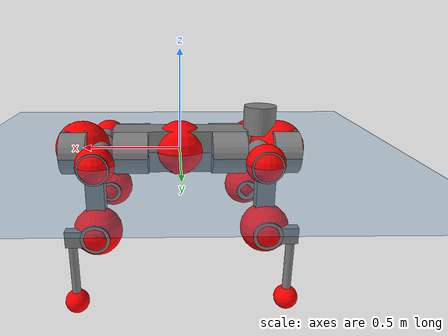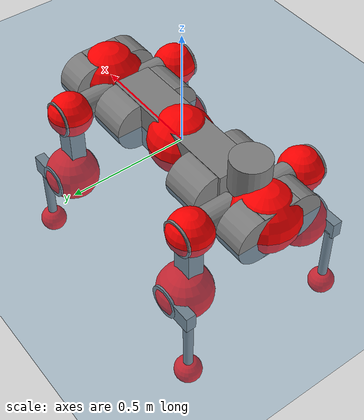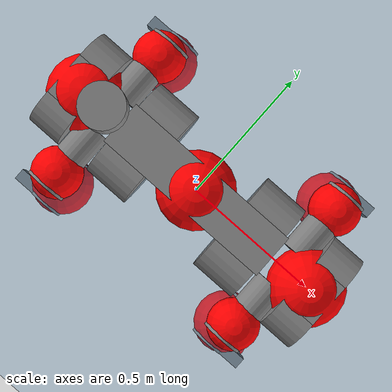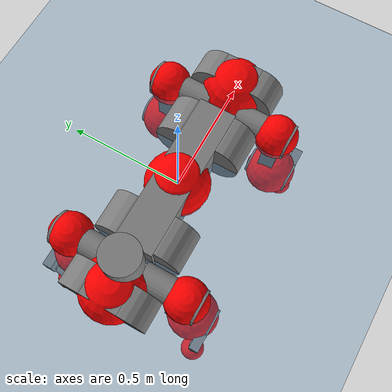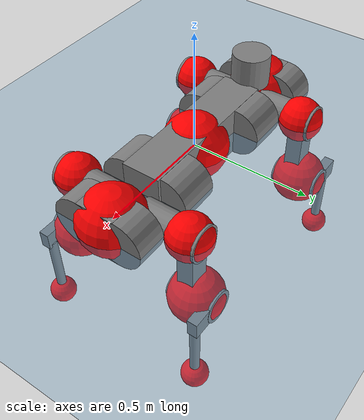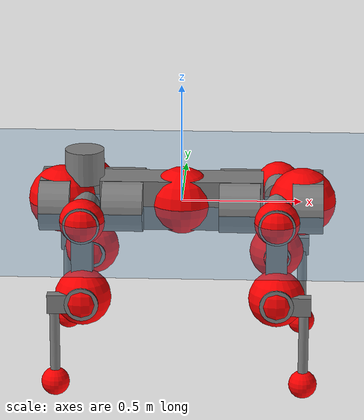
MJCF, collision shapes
<mujoco model="anymal_c">
  <compiler angle="radian" assetdir="assets" balanceinertia="true" inertiafromgeom="false"/>

  <option timestep="0.005" density="1.2" viscosity="2e-05"/>

  <size nkey="1"/>

  <visual>
    <quality shadowsize="8192"/>
    <map shadowclip="0.5"/>
  </visual>

  <default>
    <default class="/">
      <material specular="0" shininess="0.25"/>
      <geom contype="0" conaffinity="0" group="1" solref="-1000 -80"/>
      <site size="0.01 0.005 0.005" group="5"/>
      <general forcelimited="true" forcerange="-80 80" biastype="affine" gainprm="80" biasprm="0 -80 -2"/>
      <default class="anymal_c">
        <joint armature="0.01" damping="0.01" frictionloss="0.1"/>
        <default class="visual">
          <geom type="mesh" group="2"/>
          <default class="visual_zflip"/>
        </default>
        <default class="collision">
          <geom type="cylinder" group="3"/>
          <default class="foot">
            <geom size="0.03 0 0" type="sphere" condim="6" priority="1" friction="0.8 0.02 0.01" solimp="0.015 1 0.03"/>
          </default>
        </default>
      </default>
      <default class="reward_collision_sphere">
        <geom group="5" rgba="1 0 0 1"/>
      </default>
    </default>
  </default>

  <asset>
    <texture type="skybox" colorspace="auto" name="//unnamed_texture_0" builtin="gradient" rgb1="0.95 0.95 0.95" rgb2="0.95 0.95 0.95" width="100" height="600"/>
    <texture type="2d" colorspace="auto" name="texplane" builtin="checker" rgb1="0.345 0.575 0.748" rgb2="0.345 0.575 0.748" markrgb="1 1 1" width="512" height="512"/>
    <texture type="2d" colorspace="linear" name="base" file="base.png"/>
    <texture type="2d" colorspace="linear" name="top_shell" file="top_shell.png"/>
    <texture type="2d" colorspace="linear" name="bottom_shell" file="bottom_shell.png"/>
    <texture type="2d" colorspace="linear" name="remote" file="remote.png"/>
    <texture type="2d" colorspace="linear" name="hatch" file="hatch.png"/>
    <texture type="2d" colorspace="linear" name="handle" file="handle.png"/>
    <texture type="2d" colorspace="linear" name="face" file="face.png"/>
    <texture type="2d" colorspace="linear" name="battery" file="battery.png"/>
    <texture type="2d" colorspace="linear" name="lidar_cage" file="lidar_cage.png"/>
    <texture type="2d" colorspace="linear" name="depth_camera" file="depth_camera.png"/>
    <texture type="2d" colorspace="linear" name="wide_angle_camera" file="wide_angle_camera.png"/>
    <texture type="2d" colorspace="linear" name="lidar" file="lidar.png"/>
    <texture type="2d" colorspace="linear" name="drive" file="drive.png"/>
    <texture type="2d" colorspace="linear" name="hip_l" file="hip_l.png"/>
    <texture type="2d" colorspace="linear" name="shank_l" file="shank_l.png"/>
    <texture type="2d" colorspace="linear" name="foot" file="foot.png"/>
    <texture type="2d" colorspace="linear" name="thigh" file="thigh.png"/>
    <texture type="2d" colorspace="linear" name="shank_r" file="shank_r.png"/>
    <texture type="2d" colorspace="linear" name="hip_r" file="hip_r.png"/>
    <material name="MatPlane" class="/" texture="texplane" texuniform="true" texrepeat="2 2" specular="0.9" shininess="0.5"/>
    <material name="black_plastic" class="/" rgba="0.007 0.007 0.007 1"/>
    <material name="green" class="/" rgba="0.052 0.178 0.033 1"/>
    <material name="red" class="/" rgba="0.178 0.006 0.005 1"/>
    <material name="yellow" class="/" rgba="0.178 0.119 0.006 1"/>
    <material name="lwl" class="/" rgba="0.8 0.8 0.8 1"/>
    <material name="base" class="/" texture="base"/>
    <material name="top_shell" class="/" texture="top_shell"/>
    <material name="bottom_shell" class="/" texture="bottom_shell"/>
    <material name="hip_l" class="/" texture="hip_l"/>
    <material name="thigh" class="/" texture="thigh"/>
    <material name="shank_l" class="/" texture="shank_l"/>
    <material name="foot" class="/" texture="foot"/>
    <material name="hip_r" class="/" texture="hip_r"/>
    <material name="shank" class="/" texture="shank_r"/>
    <material name="hatch" class="/" texture="hatch"/>
    <material name="remote" class="/" texture="remote"/>
    <material name="handle" class="/" texture="handle"/>
    <material name="face" class="/" texture="face"/>
    <material name="depth_camera" class="/" texture="depth_camera"/>
    <material name="wide_angle_camera" class="/" texture="wide_angle_camera"/>
    <material name="battery" class="/" texture="battery"/>
    <material name="lidar_cage" class="/" texture="lidar_cage"/>
    <material name="lidar" class="/" texture="lidar"/>
    <material name="drive" class="/" texture="drive"/>
    <mesh name="base_0" class="/" file="base_0.obj"/>
    <mesh name="base_1" class="/" file="base_1.obj"/>
    <mesh name="base_2" class="/" file="base_2.obj"/>
    <mesh name="base_3" class="/" file="base_3.obj"/>
    <mesh name="base_4" class="/" file="base_4.obj"/>
    <mesh name="base_5" class="/" file="base_5.obj"/>
    <mesh name="top_shell" class="/" file="top_shell.obj"/>
    <mesh name="bottom_shell" class="/" file="bottom_shell.obj"/>
    <mesh name="remote" class="/" file="remote.obj"/>
    <mesh name="handle" class="/" file="handle.obj"/>
    <mesh name="face" class="/" file="face.obj"/>
    <mesh name="wide_angle_camera" class="/" file="wide_angle_camera.obj"/>
    <mesh name="depth_camera" class="/" file="depth_camera.obj"/>
    <mesh name="battery" class="/" file="battery.obj"/>
    <mesh name="lidar_cage" class="/" file="lidar_cage.obj"/>
    <mesh name="lidar" class="/" file="lidar.obj"/>
    <mesh name="drive" class="/" file="drive.obj"/>
    <mesh name="hip_l" class="/" file="hip_l.obj"/>
    <mesh name="thigh" class="/" file="thigh.obj"/>
    <mesh name="shank_l" class="/" file="shank_l.obj"/>
    <mesh name="foot" class="/" file="foot.obj"/>
    <mesh name="hip_r" class="/" file="hip_r.obj"/>
    <mesh name="hatch" class="/" file="hatch.obj"/>
    <mesh name="shank_r" class="/" file="shank_r.obj"/>
  </asset>

  <worldbody>
    <geom name="floor" class="/" size="100 100 0.125" type="plane" group="0" material="MatPlane"/>
    <light name="toplight_shadow" class="/" pos="0 0 5" dir="0.0990148 0.0990148 -0.990148" type="directional" ambient="0.04 0.04 0.04" diffuse="0.55 0.55 0.55" specular="0.12 0.12 0.12"/>
    <light name="toplight_fill" class="/" pos="0 0 5" dir="0.0990148 0.0990148 -0.990148" type="directional" castshadow="false" ambient="0.04 0.04 0.04" diffuse="0.3 0.3 0.3" specular="0.08 0.08 0.08"/>
    <body name="trunk" childclass="anymal_c" pos="0.00077518 0.00133507 0.00133114" quat="1 0.000102928 3.08066e-05 -7.77477e-07">
      <inertial pos="0.00497151 0.00199427 0.0514288" quat="0.511989 0.506126 0.476637 0.5045" mass="30.8616" diaginertia="1.09378 2.02283 0.364984"/>
      <joint name="//unnamed_joint_0" type="free" armature="0" damping="0" frictionloss="0"/>
      <geom name="//unnamed_geom_1" class="visual" material="green" mesh="base_0"/>
      <geom name="//unnamed_geom_2" class="visual" material="yellow" mesh="base_1"/>
      <geom name="//unnamed_geom_3" class="visual" material="red" mesh="base_2"/>
      <geom name="//unnamed_geom_4" class="visual" material="black_plastic" mesh="base_3"/>
      <geom name="//unnamed_geom_5" class="visual" material="lwl" mesh="base_4"/>
      <geom name="//unnamed_geom_6" class="visual" material="base" mesh="base_5"/>
      <geom name="trunk_1" class="collision" size="0.338823 0.0817849 0.105152" type="box"/>
      <geom name="trunk_2" class="collision" size="0.105152 0.0847058" pos="0.242808 0.089662 0" quat="0.707107 0 0.707107 0"/>
      <geom name="trunk_3" class="collision" size="0.105152 0.0847058" pos="-0.242808 0.089662 0" quat="0.707107 0 0.707107 0"/>
      <geom name="trunk_4" class="collision" size="0.105152 0.0847058" pos="0.242808 -0.089662 0" quat="0.707107 0 0.707107 0"/>
      <geom name="trunk_5" class="collision" size="0.105152 0.0847058" pos="-0.242808 -0.089662 0" quat="0.707107 0 0.707107 0"/>
      <geom name="//unnamed_geom_12" class="visual" material="top_shell" mesh="top_shell"/>
      <geom name="//unnamed_geom_13" class="visual" material="bottom_shell" mesh="bottom_shell"/>
      <geom name="//unnamed_geom_14" class="visual" material="remote" mesh="remote"/>
      <geom name="//unnamed_geom_15" class="visual" material="handle" mesh="handle"/>
      <geom name="//unnamed_geom_16" class="visual" pos="0.462731 0 0" quat="1 0 0 0" material="face" mesh="face"/>
      <geom name="trunk_6" class="collision" size="0.0642596 0.0817849 0.105152" pos="0.524131 0 0" type="box"/>
      <geom name="//unnamed_geom_18" class="collision" size="0.105152 0.0642596" pos="0.524131 0.089662 0" quat="0.707107 0 0.707107 0"/>
      <geom name="//unnamed_geom_19" class="collision" size="0.105152 0.0642596" pos="0.524131 -0.089662 0" quat="0.707107 0 0.707107 0"/>
      <geom name="//unnamed_geom_20" class="visual" pos="0.515367 0 -0.0322835" quat="0.965926 0 0.258819 0" material="depth_camera" mesh="depth_camera"/>
      <geom name="//unnamed_geom_21" class="visual" pos="0.572693 0 0.0165841" material="wide_angle_camera" mesh="wide_angle_camera"/>
      <geom name="//unnamed_geom_22" class="visual_zflip" pos="-0.462731 0 0" quat="0 0 0 1" material="face" mesh="face"/>
      <geom name="trunk_7" class="collision" size="0.0642596 0.0817849 0.105152" pos="-0.524131 0 0" quat="0 0 0 1" type="box"/>
      <geom name="//unnamed_geom_24" class="collision" size="0.105152 0.0642596" pos="-0.524131 -0.089662 0" quat="0 -0.707107 0 0.707107"/>
      <geom name="//unnamed_geom_25" class="collision" size="0.105152 0.0642596" pos="-0.524131 0.089662 0" quat="0 -0.707107 0 0.707107"/>
      <geom name="//unnamed_geom_26" class="visual" pos="-0.515367 0 -0.0322835" quat="0 -0.258819 0 0.965926" material="depth_camera" mesh="depth_camera"/>
      <geom name="//unnamed_geom_27" class="visual_zflip" pos="-0.572693 0 0.0165841" quat="0 0 0 1" material="wide_angle_camera" mesh="wide_angle_camera"/>
      <geom name="//unnamed_geom_28" class="visual" material="battery" mesh="battery"/>
      <geom name="//unnamed_geom_29" class="visual" pos="0 0.100095 0.0322471" quat="0.683013 -0.183013 0.183013 0.683013" material="depth_camera" mesh="depth_camera"/>
      <geom name="//unnamed_geom_30" class="visual" pos="0 -0.100095 0.0322471" quat="0.683013 0.183013 0.183013 -0.683013" material="depth_camera" mesh="depth_camera"/>
      <geom name="//unnamed_geom_31" class="visual" pos="-0.406355 0 0.0814249" quat="1 0 0 0" material="lidar_cage" mesh="lidar_cage"/>
      <geom name="trunk_8" class="collision" size="0.0817849 0.0701013" pos="-0.406355 0 0.147894"/>
      <geom name="//unnamed_geom_33" class="visual" pos="-0.406355 6.46376e-05 0.157532" quat="0.707107 0 0 -0.707107" material="lidar" mesh="lidar"/>
      <geom name="//unnamed_geom_34" class="visual" pos="0.334796 0.133151 2.98537e-09" quat="0.258819 0.965926 0 0" material="drive" mesh="drive"/>
      <geom name="//unnamed_geom_35" class="visual" pos="0.334796 -0.133151 -2.98537e-09" quat="0.258819 -0.965926 0 0" material="drive" mesh="drive"/>
      <geom name="//unnamed_geom_36" class="visual" pos="-0.334796 0.133151 -2.98537e-09" quat="0 0 0.965926 -0.258819" material="drive" mesh="drive"/>
      <geom name="//unnamed_geom_37" class="visual" pos="-0.334796 -0.133151 2.98537e-09" quat="0 0 -0.965926 -0.258819" material="drive" mesh="drive"/>
      <geom name="//unnamed_geom_38" class="visual" pos="0.129498 0 0.080871" quat="1 0 0 0" material="hatch" mesh="hatch"/>
      <geom name="//unnamed_geom_39" class="reward_collision_sphere" size="0.140203"/>
      <geom name="//unnamed_geom_40" class="reward_collision_sphere" size="0.140203" pos="0.502362 0 0"/>
      <geom name="//unnamed_geom_41" class="reward_collision_sphere" size="0.140203" pos="-0.502362 0 0"/>
      <site name="imu" pos="0.272469 0.0145191 0.0578778" size="0.0116836"/>
      <camera name="track" pos="0 -2.56177 0" quat="0.707107 0.707107 0 0" mode="trackcom"/>
      <camera name="ego_camera" pos="0.502362 0 -0.0443129" quat="-0.5 -0.5 0.5 0.5"/>
      <body name="LF_HIP" pos="0.334875 0.128128 -0.00320155" quat="0.258161 0.966102 0.000448231 8.22552e-05">
        <inertial pos="0.0613329 -0.019832 -0.00775597" quat="-0.130599 0.704344 -0.1351 0.684538" mass="4.51661" diaginertia="0.0101698 0.0177248 0.00540895"/>
        <joint name="LF_HAA" pos="0 0 0" axis="1 0.00031166 0.000238892" range="-0.827342 0.51134" armature="0.0113912" damping="0.0142323" frictionloss="0.115726"/>
        <geom name="//unnamed_geom_42" class="visual" pos="0 0.000175616 -2.88448e-05" quat="0.258819 -0.965926 0 0" material="hip_l" mesh="hip_l"/>
        <geom name="//unnamed_geom_43" class="visual" pos="0.06687 -0.0831319 -0.0467162" quat="0.183013 -0.683013 0.683013 0.183013" material="drive" mesh="drive"/>
        <geom name="//unnamed_geom_44" class="collision" size="0.0584178 0.0817849" pos="0.06687 -0.0153191 -0.00764951" quat="-0.353553 -0.612372 0.612372 -0.353553"/>
        <body name="LF_THIGH" pos="0.0666445 -0.0981515 -0.0481613" quat="0.183237 -0.683137 0.682862 0.182888">
          <inertial pos="0.0338642 0.000522933 -0.270094" quat="0.993235 -0.0144719 -0.0856258 0.0770958" mass="4.89656" diaginertia="0.0536415 0.103828 0.00679919"/>
          <joint name="LF_HFE" pos="0 0 0" axis="0.99997 0.006283 0.00461311" stiffness="0.0141823" range="-3.11314 3.06787" armature="0.010586" damping="0.0254689" frictionloss="0.129402"/>
          <geom name="//unnamed_geom_45" class="visual" pos="-0.00327341 -5.15812e-06 0" quat="0.707107 0 0 -0.707107" material="thigh" mesh="thigh"/>
          <geom name="//unnamed_geom_46" class="collision" size="0.0759431 0.0467342" pos="0.0446544 0 0" quat="0.5 0.5 -0.5 -0.5"/>
          <geom name="//unnamed_geom_47" class="collision" size="0.0438133 0.0350507 0.165105" pos="0.0334908 0 -0.156551" quat="0.707107 0 0 -0.707107" type="box"/>
          <geom name="//unnamed_geom_48" class="visual" pos="0.111971 0 -0.315729" quat="1 0 0 0" material="drive" mesh="drive"/>
          <geom name="//unnamed_geom_49" class="collision" size="0.0584178 0.0817849" pos="0.0338257 0 -0.315729" quat="0.707107 0 0.707107 0"/>
          <geom name="//unnamed_geom_50" class="reward_collision_sphere" size="0.0934685" pos="0.027909 0 0"/>
          <body name="LF_SHANK" pos="0.109411 0.00344039 -0.318128" quat="1 -2.15642e-05 0.000354717 -0.000417083">
            <inertial pos="0.00613366 -0.0784668 -0.0846971" quat="0.992706 -0.118158 -0.00341661 -0.0237" mass="0.90732" diaginertia="0.0176942 0.0299595 0.00194711"/>
            <joint name="LF_KFE" pos="0 0 0" axis="0.999998 0.00146578 0.000957869" range="-3.05061 3.12267" armature="0.0116077" damping="0.00824001" frictionloss="0.117771"/>
            <geom name="//unnamed_geom_51" class="visual" pos="-0.00106739 -0.00569136 0" quat="0.707107 0 0 -0.707107" material="shank_l" mesh="shank_l"/>
            <geom name="LF_kfe_act" class="collision" size="0.0701013 0.0233671" pos="0.0223272 0 0" quat="0.5 0.5 -0.5 -0.5"/>
            <geom name="//unnamed_geom_53" class="collision" size="0.0671793 0.039432 0.0221988" pos="0.0223272 -0.0736496 0" quat="0.5 0.5 -0.5 -0.5" type="box"/>
            <geom name="//unnamed_geom_54" class="visual" pos="0.0145688 -0.114488 -0.37441" quat="0.382683 0 0 -0.92388" material="foot" mesh="foot"/>
            <geom name="LF_calf" class="collision" size="0.0204462 0.165033" pos="0.0145685 -0.112654 -0.187205" quat="0.707107 0 0 -0.707107"/>
            <geom name="LF_foot" class="foot" size="0.0307248" pos="0.0145685 -0.112654 -0.349484" quat="0.707107 0 0 -0.707107"/>
            <geom name="//unnamed_geom_57" class="reward_collision_sphere" size="0.116836" pos="-0.055818 0 0"/>
            <geom name="//unnamed_geom_58" class="reward_collision_sphere" size="0.0584178" pos="0.0145685 -0.112654 -0.349484"/>
            <site name="LF_foot" class="foot" pos="0.0145685 -0.112654 -0.349484" quat="0.707107 0 0 -0.707107" size="0.0116836"/>
          </body>
        </body>
      </body>
      <body name="RF_HIP" pos="0.335461 -0.133778 -0.00203724" quat="0.259103 -0.96585 0.000295021 -8.22491e-05">
        <inertial pos="0.0611753 0.022544 -0.00664565" quat="0.136496 0.678944 0.131122 0.709374" mass="4.64889" diaginertia="0.00999333 0.0183858 0.00545651"/>
        <joint name="RF_HAA" pos="0 0 0" axis="1 0.000285523 -0.000223323" range="-0.482259 0.727062" armature="0.0130953" damping="0.0239572" frictionloss="0.129997"/>
        <geom name="//unnamed_geom_59" class="visual" pos="0 -0.000175615 -2.88447e-05" quat="0.258819 0.965926 0 0" material="hip_r" mesh="hip_r"/>
        <geom name="//unnamed_geom_60" class="visual" pos="0.06687 0.0831319 -0.0467162" quat="0.183013 0.683013 0.683013 -0.183013" material="drive" mesh="drive"/>
        <geom name="//unnamed_geom_61" class="collision" size="0.0584178 0.0817849" pos="0.06687 0.0153191 -0.00764951" quat="-0.353553 0.612372 0.612372 0.353553"/>
        <body name="RF_THIGH" pos="0.0633827 0.0876385 -0.0454898" quat="0.18375 0.682519 0.683315 -0.182987">
          <inertial pos="0.0331075 0.00498471 -0.272537" quat="0.992799 -0.0033711 -0.0816591 0.0875813" mass="4.7381" diaginertia="0.0518533 0.10088 0.00662886"/>
          <joint name="RF_HFE" pos="0 0 0" axis="0.999998 0.00167621 0.00140283" range="-3.06488 3.1371" armature="0.012623" damping="0.0248239" frictionloss="0.116357"/>
          <geom name="//unnamed_geom_62" class="visual" pos="-0.00327341 -5.15812e-06 0" quat="0.707107 0 0 -0.707107" material="thigh" mesh="thigh"/>
          <geom name="//unnamed_geom_63" class="collision" size="0.0759431 0.0467342" pos="0.0446544 0 0" quat="0.5 0.5 0.5 0.5"/>
          <geom name="//unnamed_geom_64" class="collision" size="0.0438133 0.0350507 0.165105" pos="0.0334908 0 -0.156551" quat="0.707107 0 0 0.707107" type="box"/>
          <geom name="//unnamed_geom_65" class="visual" pos="0.111971 0 -0.315729" quat="1 0 0 0" material="drive" mesh="drive"/>
          <geom name="//unnamed_geom_66" class="collision" size="0.0584178 0.0817849" pos="0.0338257 0 -0.315729" quat="0.707107 0 0.707107 0"/>
          <geom name="//unnamed_geom_67" class="reward_collision_sphere" size="0.0934685" pos="0.027909 0 0"/>
          <body name="RF_SHANK" pos="0.115646 0.00254447 -0.316003" quat="0.999999 -0.000847612 -0.000830465 -0.0003508">
            <inertial pos="0.00835266 0.0778377 -0.0896402" quat="0.992955 0.116088 -0.00101826 0.0237231" mass="0.953437" diaginertia="0.0181744 0.0316775 0.00192352"/>
            <joint name="RF_KFE" pos="0 0 0" axis="0.999747 -0.0112787 0.019482" range="-3.08237 3.11841" armature="0.00969699" damping="0" frictionloss="0.130673"/>
            <geom name="//unnamed_geom_68" class="visual" pos="-0.00106738 0.00569135 0" quat="0.707107 0 0 0.707107" material="shank" mesh="shank_r"/>
            <geom name="RF_kfe_act" class="collision" size="0.0701013 0.0233671" pos="0.0223272 0 0" quat="0.5 0.5 0.5 0.5"/>
            <geom name="//unnamed_geom_70" class="collision" size="0.0671793 0.039432 0.0221988" pos="0.0223272 0.0736496 0" quat="0.5 0.5 0.5 0.5" type="box"/>
            <geom name="//unnamed_geom_71" class="visual" pos="0.0145682 0.114488 -0.37441" quat="0.382683 0 0 0.92388" material="foot" mesh="foot"/>
            <geom name="RF_calf" class="collision" size="0.0204462 0.165033" pos="0.0145685 0.112654 -0.187205" quat="0.707107 0 0 0.707107"/>
            <geom name="RF_foot" class="foot" size="0.0295223" pos="0.0145685 0.112654 -0.349484" quat="0.707107 0 0 0.707107"/>
            <geom name="//unnamed_geom_74" class="reward_collision_sphere" size="0.116836" pos="-0.055818 0 0"/>
            <geom name="//unnamed_geom_75" class="reward_collision_sphere" size="0.0584178" pos="0.0145685 0.112654 -0.349484"/>
            <site name="RF_foot" class="foot" pos="0.0145685 0.112654 -0.349484" quat="0.707107 0 0 0.707107" size="0.0116836"/>
          </body>
        </body>
      </body>
      <body name="LH_HIP" pos="-0.33146 0.132766 0.00453988" quat="0.000605826 -0.00112833 0.965993 -0.258565">
        <inertial pos="0.0625485 0.0214841 -0.00826641" quat="0.143979 0.683857 0.130569 0.703251" mass="4.67643" diaginertia="0.0103317 0.0173767 0.00567646"/>
        <joint name="LH_HAA" pos="0 0 0" axis="0.999943 -0.00974506 -0.00432438" range="-0.446084 0.683753" armature="0.0116147" damping="0.013255" frictionloss="0.131022"/>
        <geom name="//unnamed_geom_76" class="visual" pos="0 -0.000175615 -2.88447e-05" quat="-0.258819 -0.965926 0 0" material="hip_r" mesh="hip_r"/>
        <geom name="//unnamed_geom_77" class="visual" pos="0.06687 0.0831319 -0.0467162" quat="0.183013 0.683013 0.683013 -0.183013" material="drive" mesh="drive"/>
        <geom name="//unnamed_geom_78" class="collision" size="0.0584178 0.0817849" pos="0.06687 0.0153191 -0.00764951" quat="-0.353553 0.612372 0.612372 0.353553"/>
        <body name="LH_THIGH" pos="0.0664035 0.0920644 -0.0420786" quat="0.182352 0.684065 0.682154 -0.182944">
          <inertial pos="0.0335751 -0.0018702 -0.26814" quat="0.992745 -0.00797839 -0.081918 0.0876546" mass="4.69661" diaginertia="0.0521456 0.108262 0.00704653"/>
          <joint name="LH_HFE" pos="0 0 0" axis="0.999996 0.00287997 9.94596e-05" range="-3.11395 3.14607" armature="0.010563" damping="0.0181233" frictionloss="0.108528"/>
          <geom name="//unnamed_geom_79" class="visual" pos="-0.00327341 -5.15812e-06 0" quat="0.707107 0 0 -0.707107" material="thigh" mesh="thigh"/>
          <geom name="//unnamed_geom_80" class="collision" size="0.0759431 0.0467342" pos="0.0446544 0 0" quat="0.5 0.5 -0.5 -0.5"/>
          <geom name="//unnamed_geom_81" class="collision" size="0.0438133 0.0350507 0.165105" pos="0.0334908 0 -0.156551" quat="0.707107 0 0 -0.707107" type="box"/>
          <geom name="//unnamed_geom_82" class="visual" pos="0.111971 0 -0.315729" quat="1 0 0 0" material="drive" mesh="drive"/>
          <geom name="//unnamed_geom_83" class="collision" size="0.0584178 0.0817849" pos="0.0338257 0 -0.315729" quat="0.707107 0 0.707107 0"/>
          <geom name="//unnamed_geom_84" class="reward_collision_sphere" size="0.0934685" pos="0.027909 0 0"/>
          <body name="LH_SHANK" pos="0.11168 0.00532554 -0.312544" quat="0.999999 0.00102427 0.000497271 -0.000854173">
            <inertial pos="0.00481665 0.0788548 -0.0916012" quat="0.99269 0.118133 0.000228824 0.0247131" mass="0.948116" diaginertia="0.0171447 0.0317871 0.00187926"/>
            <joint name="LH_KFE" pos="0 0 0" axis="0.999999 0.00107335 0.000943788" range="-3.23566 3.16318" armature="0.0114918" damping="0.00251464" frictionloss="0.120151"/>
            <geom name="//unnamed_geom_85" class="visual" pos="-0.00106738 0.00569135 0" quat="-0.707107 0 0 -0.707107" material="shank" mesh="shank_r"/>
            <geom name="LH_kfe_act" class="collision" size="0.0701013 0.0233671" pos="0.0223272 0 0" quat="0.5 0.5 -0.5 -0.5"/>
            <geom name="//unnamed_geom_87" class="collision" size="0.0671793 0.039432 0.0221988" pos="0.0223272 0.0736496 0" quat="0.5 0.5 -0.5 -0.5" type="box"/>
            <geom name="//unnamed_geom_88" class="visual" pos="0.0145682 0.114488 -0.37441" quat="-0.382683 0 0 -0.92388" material="foot" mesh="foot"/>
            <geom name="LH_calf" class="collision" size="0.0204462 0.165033" pos="0.0145685 0.112654 -0.187205" quat="0.707107 0 0 -0.707107"/>
            <geom name="LH_foot" class="foot" size="0.0383603" pos="0.0145685 0.112654 -0.349484" quat="0.707107 0 0 -0.707107"/>
            <geom name="//unnamed_geom_91" class="reward_collision_sphere" size="0.116836" pos="-0.055818 0 0"/>
            <geom name="//unnamed_geom_92" class="reward_collision_sphere" size="0.0584178" pos="0.0145685 0.112654 -0.349484"/>
            <site name="LH_foot" class="foot" pos="0.0145685 0.112654 -0.349484" quat="0.707107 0 0 -0.707107" size="0.0116836"/>
          </body>
        </body>
      </body>
      <body name="RH_HIP" pos="-0.332274 -0.137071 -0.00139914" quat="0.000219666 -0.000349659 -0.966182 -0.257859">
        <inertial pos="0.0657611 -0.0219244 -0.00920691" quat="-0.123846 0.71792 -0.137722 0.671033" mass="4.49235" diaginertia="0.0101064 0.0175666 0.00529681"/>
        <joint name="RH_HAA" pos="0 0 0" axis="0.999901 0.0140335 -0.000689519" stiffness="0.00589062" range="-0.763867 0.559524" armature="0.011458" damping="0.00269881" frictionloss="0.126247"/>
        <geom name="//unnamed_geom_93" class="visual" pos="0 0.000175616 -2.88448e-05" quat="-0.258819 0.965926 0 0" material="hip_l" mesh="hip_l"/>
        <geom name="//unnamed_geom_94" class="visual" pos="0.06687 -0.0831319 -0.0467162" quat="-0.183013 0.683013 -0.683013 -0.183013" material="drive" mesh="drive"/>
        <geom name="//unnamed_geom_95" class="collision" size="0.0584178 0.0817849" pos="0.06687 -0.0153191 -0.00764951" quat="0.353553 0.612372 -0.612372 0.353553"/>
        <body name="RH_THIGH" pos="0.0667189 -0.0937906 -0.0460093" quat="-0.184156 0.682761 -0.682666 -0.184097">
          <inertial pos="0.0348572 0.00330272 -0.27163" quat="0.991779 -0.00801384 -0.0918487 0.088739" mass="4.88791" diaginertia="0.0529312 0.102443 0.0069289"/>
          <joint name="RH_HFE" pos="0 0 0" axis="0.999854 0.0155525 -0.007131" range="-3.09199 3.15821" armature="0.0114093" damping="0.00767847" frictionloss="0.13055"/>
          <geom name="//unnamed_geom_96" class="visual" pos="-0.00327341 -5.15812e-06 0" quat="0.707107 0 0 -0.707107" material="thigh" mesh="thigh"/>
          <geom name="//unnamed_geom_97" class="collision" size="0.0759431 0.0467342" pos="0.0446544 0 0" quat="0.5 0.5 0.5 0.5"/>
          <geom name="//unnamed_geom_98" class="collision" size="0.0438133 0.0350507 0.165105" pos="0.0334908 0 -0.156551" quat="0.707107 0 0 0.707107" type="box"/>
          <geom name="//unnamed_geom_99" class="visual" pos="0.111971 0 -0.315729" quat="1 0 0 0" material="drive" mesh="drive"/>
          <geom name="//unnamed_geom_100" class="collision" size="0.0584178 0.0817849" pos="0.0338257 0 -0.315729" quat="0.707107 0 0.707107 0"/>
          <geom name="//unnamed_geom_101" class="reward_collision_sphere" size="0.0934685" pos="0.027909 0 0"/>
          <body name="RH_SHANK" pos="0.118159 0.00351144 -0.31247" quat="1 0.000110385 0.000558972 0.000610384">
            <inertial pos="0.00070261 -0.0782393 -0.0918587" quat="0.992186 -0.119709 -0.0010477 -0.0351408" mass="0.920432" diaginertia="0.0167379 0.0305969 0.0019075"/>
            <joint name="RH_KFE" pos="0 0 0" axis="0.999836 -0.0180405 0.00123513" range="-3.09446 3.06652" armature="0.013635" damping="0.0109006" frictionloss="0.112409"/>
            <geom name="//unnamed_geom_102" class="visual" pos="-0.00106739 -0.00569136 0" quat="0.707107 0 0 -0.707107" material="shank_l" mesh="shank_l"/>
            <geom name="RH_kfe_act" class="collision" size="0.0701013 0.0233671" pos="0.0223272 0 0" quat="0.5 0.5 0.5 0.5"/>
            <geom name="//unnamed_geom_104" class="collision" size="0.0671793 0.039432 0.0221988" pos="0.0223272 -0.0736496 0" quat="0.5 0.5 0.5 0.5" type="box"/>
            <geom name="//unnamed_geom_105" class="visual" pos="0.0145688 -0.114488 -0.37441" quat="0.382683 0 0 -0.92388" material="foot" mesh="foot"/>
            <geom name="RH_calf" class="collision" size="0.0204462 0.165033" pos="0.0145685 -0.112654 -0.187205" quat="0.707107 0 0 0.707107"/>
            <geom name="RH_foot" class="foot" size="0.0321796" pos="0.0145685 -0.112654 -0.349484" quat="0.707107 0 0 0.707107"/>
            <geom name="//unnamed_geom_108" class="reward_collision_sphere" size="0.116836" pos="-0.055818 0 0"/>
            <geom name="//unnamed_geom_109" class="reward_collision_sphere" size="0.0584178" pos="0.0145685 -0.112654 -0.349484"/>
            <site name="RH_foot" class="foot" pos="0.0145685 -0.112654 -0.349484" quat="0.707107 0 0 0.707107" size="0.0116836"/>
          </body>
        </body>
      </body>
    </body>
  </worldbody>

  <contact>
    <pair class="/" geom1="floor" geom2="LF_foot" name="//unnamed_contact_0"/>
    <pair class="/" geom1="floor" geom2="RF_foot" name="//unnamed_contact_1"/>
    <pair class="/" geom1="floor" geom2="LH_foot" name="//unnamed_contact_2"/>
    <pair class="/" geom1="floor" geom2="RH_foot" name="//unnamed_contact_3"/>
  </contact>

  <actuator>
    <general name="LF_HAA" class="/" joint="LF_HAA" forcerange="-74.7973 74.7973" gainprm="85.4195" biasprm="0 -85.4195 -2.46695"/>
    <general name="LF_HFE" class="/" joint="LF_HFE" forcerange="-93.5961 93.5961" gainprm="85.4195" biasprm="0 -85.4195 -2.46695"/>
    <general name="LF_KFE" class="/" joint="LF_KFE" forcerange="-85.4369 85.4369" gainprm="85.4195" biasprm="0 -85.4195 -2.46695"/>
    <general name="RF_HAA" class="/" joint="RF_HAA" forcerange="-80.6118 80.6118" gainprm="85.4195" biasprm="0 -85.4195 -2.46695"/>
    <general name="RF_HFE" class="/" joint="RF_HFE" forcerange="-80.8203 80.8203" gainprm="85.4195" biasprm="0 -85.4195 -2.46695"/>
    <general name="RF_KFE" class="/" joint="RF_KFE" forcerange="-93.183 93.183" gainprm="85.4195" biasprm="0 -85.4195 -2.46695"/>
    <general name="LH_HAA" class="/" joint="LH_HAA" forcerange="-87.0636 87.0636" gainprm="85.4195" biasprm="0 -85.4195 -2.46695"/>
    <general name="LH_HFE" class="/" joint="LH_HFE" forcerange="-103.798 103.798" gainprm="85.4195" biasprm="0 -85.4195 -2.46695"/>
    <general name="LH_KFE" class="/" joint="LH_KFE" forcerange="-91.4686 91.4686" gainprm="85.4195" biasprm="0 -85.4195 -2.46695"/>
    <general name="RH_HAA" class="/" joint="RH_HAA" forcerange="-108.985 108.985" gainprm="85.4195" biasprm="0 -85.4195 -2.46695"/>
    <general name="RH_HFE" class="/" joint="RH_HFE" forcerange="-87.9263 87.9263" gainprm="85.4195" biasprm="0 -85.4195 -2.46695"/>
    <general name="RH_KFE" class="/" joint="RH_KFE" forcerange="-93.1105 93.1105" gainprm="85.4195" biasprm="0 -85.4195 -2.46695"/>
  </actuator>

  <sensor>
    <gyro site="imu" name="imu_angular_velocity"/>
    <velocimeter site="imu" name="imu_linear_velocity"/>
    <framelinvel objtype="site" objname="LF_foot" name="LF_foot_global_linear_velocity"/>
    <framelinvel objtype="site" objname="RF_foot" name="RF_foot_global_linear_velocity"/>
    <framelinvel objtype="site" objname="LH_foot" name="LH_foot_global_linear_velocity"/>
    <framelinvel objtype="site" objname="RH_foot" name="RH_foot_global_linear_velocity"/>
  </sensor>

  <keyframe>
    <key name="home" qpos="0 0 0.55 1 0 0 0 0 0.4 -0.8 0 -0.4 0.8 0 -0.4 0.8 0 0.4 -0.8"/>
  </keyframe>
</mujoco>
